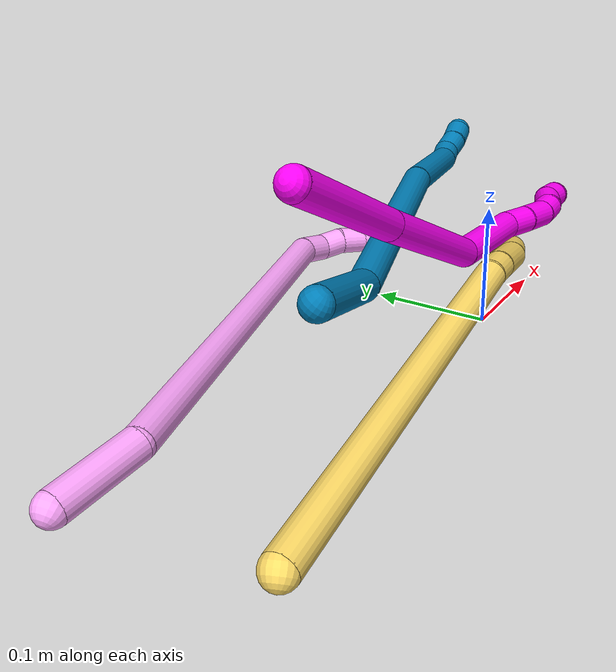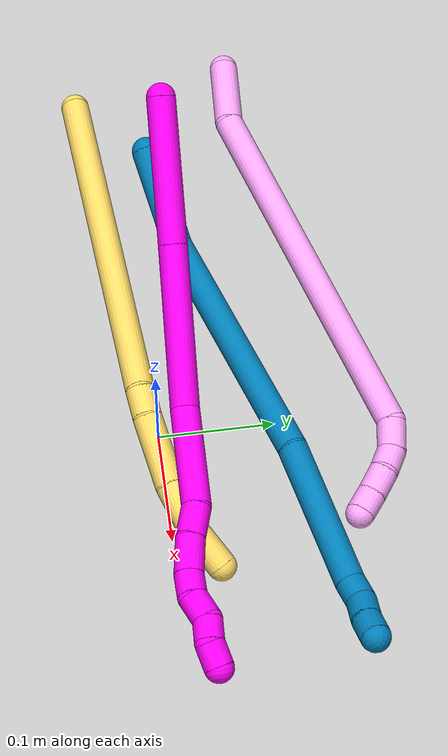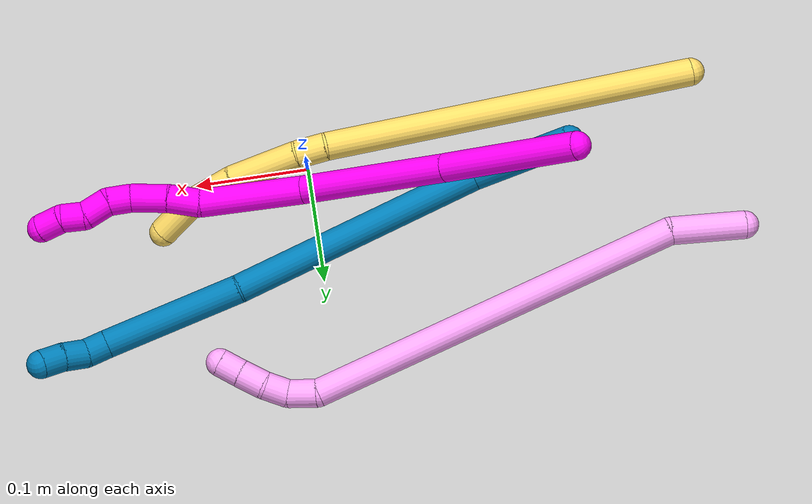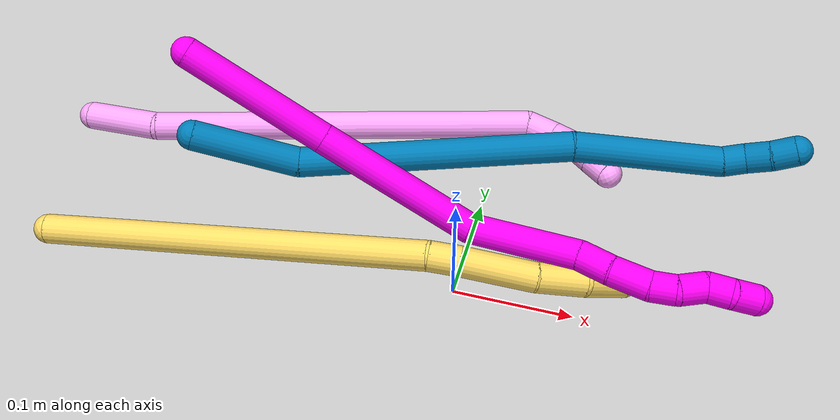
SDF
<sdf version="1.7">
 <world name="default">
  <model name="4">
   <static>0</static>
   <link name="4">
    <collision name="collision-cylinder-e_1_1_4">
     <pose>0.015862 -0.004282 -0.02918 2.99589 0.493463 2.57753</pose>
     <geometry><cylinder><radius>0.0125</radius><length>0.066974</length></cylinder></geometry>
     <surface>
      <friction><ode><mu>1.16</mu><mu2>1.16</mu2><slip1>0</slip1><slip2>0</slip2></ode></friction>
      <contact><ode><kp>1e+06</kp><kd>1</kd><max_vel>0</max_vel><min_depth>0.001</min_depth></ode></contact>
     </surface>
    </collision>
    <visual name="visual-cylinder-e_1_1_4">
     <pose>0.015862 -0.004282 -0.02918 2.99589 0.493463 2.57753</pose>
     <geometry><cylinder><radius>0.0125</radius><length>0.066974</length></cylinder></geometry>
     <material><ambient>1 0.65098 0.996078 1</ambient></material>
    </visual>
    <collision name="collision-cylinder-e_2_4_5">
     <pose>0.084293 -0.083086 -0.201927 2.6628 0.314221 1.15141</pose>
     <geometry><cylinder><radius>0.0125</radius><length>0.340169</length></cylinder></geometry>
     <surface>
      <friction><ode><mu>1.16</mu><mu2>1.16</mu2><slip1>0</slip1><slip2>0</slip2></ode></friction>
      <contact><ode><kp>1e+06</kp><kd>1</kd><max_vel>0</max_vel><min_depth>0.001</min_depth></ode></contact>
     </surface>
    </collision>
    <visual name="visual-cylinder-e_2_4_5">
     <pose>0.084293 -0.083086 -0.201927 2.6628 0.314221 1.15141</pose>
     <geometry><cylinder><radius>0.0125</radius><length>0.340169</length></cylinder></geometry>
     <material><ambient>1 0.65098 0.996078 1</ambient></material>
    </visual>
    <collision name="collision-cylinder-e_3_5_6">
     <pose>0.145878 -0.160586 -0.354809 2.83213 0.744835 2.38181</pose>
     <geometry><cylinder><radius>0.0125</radius><length>0.026601</length></cylinder></geometry>
     <surface>
      <friction><ode><mu>1.16</mu><mu2>1.16</mu2><slip1>0</slip1><slip2>0</slip2></ode></friction>
      <contact><ode><kp>1e+06</kp><kd>1</kd><max_vel>0</max_vel><min_depth>0.001</min_depth></ode></contact>
     </surface>
    </collision>
    <visual name="visual-cylinder-e_3_5_6">
     <pose>0.145878 -0.160586 -0.354809 2.83213 0.744835 2.38181</pose>
     <geometry><cylinder><radius>0.0125</radius><length>0.026601</length></cylinder></geometry>
     <material><ambient>1 0.65098 0.996078 1</ambient></material>
    </visual>
    <collision name="collision-cylinder-e_4_6_7">
     <pose>0.162121 -0.161204 -0.372057 -2.85245 0.717721 -2.40113</pose>
     <geometry><cylinder><radius>0.0125</radius><length>0.021977</length></cylinder></geometry>
     <surface>
      <friction><ode><mu>1.16</mu><mu2>1.16</mu2><slip1>0</slip1><slip2>0</slip2></ode></friction>
      <contact><ode><kp>1e+06</kp><kd>1</kd><max_vel>0</max_vel><min_depth>0.001</min_depth></ode></contact>
     </surface>
    </collision>
    <visual name="visual-cylinder-e_4_6_7">
     <pose>0.162121 -0.161204 -0.372057 -2.85245 0.717721 -2.40113</pose>
     <geometry><cylinder><radius>0.0125</radius><length>0.021977</length></cylinder></geometry>
     <material><ambient>1 0.65098 0.996078 1</ambient></material>
    </visual>
    <collision name="collision-cylinder-e_5_7_8">
     <pose>0.179002 -0.156496 -0.386404 -2.79069 0.955159 -2.48157</pose>
     <geometry><cylinder><radius>0.0125</radius><length>0.023652</length></cylinder></geometry>
     <surface>
      <friction><ode><mu>1.16</mu><mu2>1.16</mu2><slip1>0</slip1><slip2>0</slip2></ode></friction>
      <contact><ode><kp>1e+06</kp><kd>1</kd><max_vel>0</max_vel><min_depth>0.001</min_depth></ode></contact>
     </surface>
    </collision>
    <visual name="visual-cylinder-e_5_7_8">
     <pose>0.179002 -0.156496 -0.386404 -2.79069 0.955159 -2.48157</pose>
     <geometry><cylinder><radius>0.0125</radius><length>0.023652</length></cylinder></geometry>
     <material><ambient>1 0.65098 0.996078 1</ambient></material>
    </visual>
    <collision name="collision-cylinder-e_6_8_2">
     <pose>0.196712 -0.151405 -0.398643 -2.70146 0.896375 -2.27071</pose>
     <geometry><cylinder><radius>0.0125</radius><length>0.020627</length></cylinder></geometry>
     <surface>
      <friction><ode><mu>1.16</mu><mu2>1.16</mu2><slip1>0</slip1><slip2>0</slip2></ode></friction>
      <contact><ode><kp>1e+06</kp><kd>1</kd><max_vel>0</max_vel><min_depth>0.001</min_depth></ode></contact>
     </surface>
    </collision>
    <visual name="visual-cylinder-e_6_8_2">
     <pose>0.196712 -0.151405 -0.398643 -2.70146 0.896375 -2.27071</pose>
     <geometry><cylinder><radius>0.0125</radius><length>0.020627</length></cylinder></geometry>
     <material><ambient>1 0.65098 0.996078 1</ambient></material>
    </visual>
    <collision name="collision-sphere-2">
     <pose>0.204768 -0.148661 -0.40447 0 -0 0</pose>
     <geometry><sphere><radius>0.0125</radius></sphere></geometry>
     <surface>
      <friction><ode><mu>1.16</mu><mu2>1.16</mu2><slip1>0</slip1><slip2>0</slip2></ode></friction>
      <contact><ode><kp>1e+06</kp><kd>1</kd><max_vel>0</max_vel><min_depth>0.001</min_depth></ode></contact>
     </surface>
    </collision>
    <visual name="visual-sphere-2">
     <pose>0.204768 -0.148661 -0.40447 0 -0 0</pose>
     <geometry><sphere><radius>0.0125</radius></sphere></geometry>
     <material><ambient>1 0.65098 0.996078 1</ambient></material>
    </visual>
    <collision name="collision-sphere-4">
     <pose>0.031724 -0.008564 -0.058359 0 -0 0</pose>
     <geometry><sphere><radius>0.0125</radius></sphere></geometry>
     <surface>
      <friction><ode><mu>1.16</mu><mu2>1.16</mu2><slip1>0</slip1><slip2>0</slip2></ode></friction>
      <contact><ode><kp>1e+06</kp><kd>1</kd><max_vel>0</max_vel><min_depth>0.001</min_depth></ode></contact>
     </surface>
    </collision>
    <visual name="visual-sphere-4">
     <pose>0.031724 -0.008564 -0.058359 0 -0 0</pose>
     <geometry><sphere><radius>0.0125</radius></sphere></geometry>
     <material><ambient>1 0.65098 0.996078 1</ambient></material>
    </visual>
    <collision name="collision-sphere-1">
     <geometry><sphere><radius>0.0125</radius></sphere></geometry>
     <surface>
      <friction><ode><mu>1.16</mu><mu2>1.16</mu2><slip1>0</slip1><slip2>0</slip2></ode></friction>
      <contact><ode><kp>1e+06</kp><kd>1</kd><max_vel>0</max_vel><min_depth>0.001</min_depth></ode></contact>
     </surface>
    </collision>
    <visual name="visual-sphere-1">
     <geometry><sphere><radius>0.0125</radius></sphere></geometry>
     <material><ambient>1 0.65098 0.996078 1</ambient></material>
    </visual>
    <collision name="collision-sphere-8">
     <pose>0.188657 -0.154149 -0.392817 0 -0 0</pose>
     <geometry><sphere><radius>0.0125</radius></sphere></geometry>
     <surface>
      <friction><ode><mu>1.16</mu><mu2>1.16</mu2><slip1>0</slip1><slip2>0</slip2></ode></friction>
      <contact><ode><kp>1e+06</kp><kd>1</kd><max_vel>0</max_vel><min_depth>0.001</min_depth></ode></contact>
     </surface>
    </collision>
    <visual name="visual-sphere-8">
     <pose>0.188657 -0.154149 -0.392817 0 -0 0</pose>
     <geometry><sphere><radius>0.0125</radius></sphere></geometry>
     <material><ambient>1 0.65098 0.996078 1</ambient></material>
    </visual>
    <collision name="collision-sphere-5">
     <pose>0.136862 -0.157608 -0.345495 0 -0 0</pose>
     <geometry><sphere><radius>0.0125</radius></sphere></geometry>
     <surface>
      <friction><ode><mu>1.16</mu><mu2>1.16</mu2><slip1>0</slip1><slip2>0</slip2></ode></friction>
      <contact><ode><kp>1e+06</kp><kd>1</kd><max_vel>0</max_vel><min_depth>0.001</min_depth></ode></contact>
     </surface>
    </collision>
    <visual name="visual-sphere-5">
     <pose>0.136862 -0.157608 -0.345495 0 -0 0</pose>
     <geometry><sphere><radius>0.0125</radius></sphere></geometry>
     <material><ambient>1 0.65098 0.996078 1</ambient></material>
    </visual>
    <collision name="collision-sphere-6">
     <pose>0.154894 -0.163564 -0.364123 0 -0 0</pose>
     <geometry><sphere><radius>0.0125</radius></sphere></geometry>
     <surface>
      <friction><ode><mu>1.16</mu><mu2>1.16</mu2><slip1>0</slip1><slip2>0</slip2></ode></friction>
      <contact><ode><kp>1e+06</kp><kd>1</kd><max_vel>0</max_vel><min_depth>0.001</min_depth></ode></contact>
     </surface>
    </collision>
    <visual name="visual-sphere-6">
     <pose>0.154894 -0.163564 -0.364123 0 -0 0</pose>
     <geometry><sphere><radius>0.0125</radius></sphere></geometry>
     <material><ambient>1 0.65098 0.996078 1</ambient></material>
    </visual>
    <collision name="collision-sphere-7">
     <pose>0.169348 -0.158844 -0.379991 0 -0 0</pose>
     <geometry><sphere><radius>0.0125</radius></sphere></geometry>
     <surface>
      <friction><ode><mu>1.16</mu><mu2>1.16</mu2><slip1>0</slip1><slip2>0</slip2></ode></friction>
      <contact><ode><kp>1e+06</kp><kd>1</kd><max_vel>0</max_vel><min_depth>0.001</min_depth></ode></contact>
     </surface>
    </collision>
    <visual name="visual-sphere-7">
     <pose>0.169348 -0.158844 -0.379991 0 -0 0</pose>
     <geometry><sphere><radius>0.0125</radius></sphere></geometry>
     <material><ambient>1 0.65098 0.996078 1</ambient></material>
    </visual>
    <inertial>
     <pose>0.090942 -0.086378 -0.211241 0 -0 0</pose>
     <mass>0.5</mass>
     <inertia><ixx>0.00414</ixx><ixy>0</ixy><ixz>0</ixz><iyy>0.00213</iyy><iyz>0</iyz><izz>0.000378</izz></inertia>
    </inertial>
   </link>
   <pose>-0.373263 0.105929 0.011498 2.29256 0.646978 -0.891581</pose>
  </model>
  <model name="5">
   <static>0</static>
   <link name="5">
    <collision name="collision-cylinder-e_1_1_4">
     <pose>0.108459 -0.007317 0.125306 0.058326 0.712613 0.021714</pose>
     <geometry><cylinder><radius>0.0125</radius><length>0.331774</length></cylinder></geometry>
     <surface>
      <friction><ode><mu>1.16</mu><mu2>1.16</mu2><slip1>0</slip1><slip2>0</slip2></ode></friction>
      <contact><ode><kp>1e+06</kp><kd>1</kd><max_vel>0</max_vel><min_depth>0.001</min_depth></ode></contact>
     </surface>
    </collision>
    <visual name="visual-cylinder-e_1_1_4">
     <pose>0.108459 -0.007317 0.125306 0.058326 0.712613 0.021714</pose>
     <geometry><cylinder><radius>0.0125</radius><length>0.331774</length></cylinder></geometry>
     <material><ambient>1 0.858824 0.4 1</ambient></material>
    </visual>
    <collision name="collision-cylinder-e_2_4_5">
     <pose>0.227007 -0.013821 0.258728 -0.099739 0.890882 -0.04765</pose>
     <geometry><cylinder><radius>0.0125</radius><length>0.025947</length></cylinder></geometry>
     <surface>
      <friction><ode><mu>1.16</mu><mu2>1.16</mu2><slip1>0</slip1><slip2>0</slip2></ode></friction>
      <contact><ode><kp>1e+06</kp><kd>1</kd><max_vel>0</max_vel><min_depth>0.001</min_depth></ode></contact>
     </surface>
    </collision>
    <visual name="visual-cylinder-e_2_4_5">
     <pose>0.227007 -0.013821 0.258728 -0.099739 0.890882 -0.04765</pose>
     <geometry><cylinder><radius>0.0125</radius><length>0.025947</length></cylinder></geometry>
     <material><ambient>1 0.858824 0.4 1</ambient></material>
    </visual>
    <collision name="collision-cylinder-e_3_5_6">
     <pose>0.262972 -0.007634 0.282953 -0.322094 0.990046 -0.174956</pose>
     <geometry><cylinder><radius>0.0125</radius><length>0.061903</length></cylinder></geometry>
     <surface>
      <friction><ode><mu>1.16</mu><mu2>1.16</mu2><slip1>0</slip1><slip2>0</slip2></ode></friction>
      <contact><ode><kp>1e+06</kp><kd>1</kd><max_vel>0</max_vel><min_depth>0.001</min_depth></ode></contact>
     </surface>
    </collision>
    <visual name="visual-cylinder-e_3_5_6">
     <pose>0.262972 -0.007634 0.282953 -0.322094 0.990046 -0.174956</pose>
     <geometry><cylinder><radius>0.0125</radius><length>0.061903</length></cylinder></geometry>
     <material><ambient>1 0.858824 0.4 1</ambient></material>
    </visual>
    <collision name="collision-cylinder-e_4_6_7">
     <pose>0.304935 0.004248 0.310026 -0.535539 0.900554 -0.263709</pose>
     <geometry><cylinder><radius>0.0125</radius><length>0.041052</length></cylinder></geometry>
     <surface>
      <friction><ode><mu>1.16</mu><mu2>1.16</mu2><slip1>0</slip1><slip2>0</slip2></ode></friction>
      <contact><ode><kp>1e+06</kp><kd>1</kd><max_vel>0</max_vel><min_depth>0.001</min_depth></ode></contact>
     </surface>
    </collision>
    <visual name="visual-cylinder-e_4_6_7">
     <pose>0.304935 0.004248 0.310026 -0.535539 0.900554 -0.263709</pose>
     <geometry><cylinder><radius>0.0125</radius><length>0.041052</length></cylinder></geometry>
     <material><ambient>1 0.858824 0.4 1</ambient></material>
    </visual>
    <collision name="collision-cylinder-e_5_7_2">
     <pose>0.335626 0.021706 0.328296 -0.982514 0.837263 -0.467382</pose>
     <geometry><cylinder><radius>0.0125</radius><length>0.039324</length></cylinder></geometry>
     <surface>
      <friction><ode><mu>1.16</mu><mu2>1.16</mu2><slip1>0</slip1><slip2>0</slip2></ode></friction>
      <contact><ode><kp>1e+06</kp><kd>1</kd><max_vel>0</max_vel><min_depth>0.001</min_depth></ode></contact>
     </surface>
    </collision>
    <visual name="visual-cylinder-e_5_7_2">
     <pose>0.335626 0.021706 0.328296 -0.982514 0.837263 -0.467382</pose>
     <geometry><cylinder><radius>0.0125</radius><length>0.039324</length></cylinder></geometry>
     <material><ambient>1 0.858824 0.4 1</ambient></material>
    </visual>
    <collision name="collision-sphere-2">
     <pose>0.350231 0.032657 0.335601 0 -0 0</pose>
     <geometry><sphere><radius>0.0125</radius></sphere></geometry>
     <surface>
      <friction><ode><mu>1.16</mu><mu2>1.16</mu2><slip1>0</slip1><slip2>0</slip2></ode></friction>
      <contact><ode><kp>1e+06</kp><kd>1</kd><max_vel>0</max_vel><min_depth>0.001</min_depth></ode></contact>
     </surface>
    </collision>
    <visual name="visual-sphere-2">
     <pose>0.350231 0.032657 0.335601 0 -0 0</pose>
     <geometry><sphere><radius>0.0125</radius></sphere></geometry>
     <material><ambient>1 0.858824 0.4 1</ambient></material>
    </visual>
    <collision name="collision-sphere-7">
     <pose>0.32102 0.010755 0.320991 0 -0 0</pose>
     <geometry><sphere><radius>0.0125</radius></sphere></geometry>
     <surface>
      <friction><ode><mu>1.16</mu><mu2>1.16</mu2><slip1>0</slip1><slip2>0</slip2></ode></friction>
      <contact><ode><kp>1e+06</kp><kd>1</kd><max_vel>0</max_vel><min_depth>0.001</min_depth></ode></contact>
     </surface>
    </collision>
    <visual name="visual-sphere-7">
     <pose>0.32102 0.010755 0.320991 0 -0 0</pose>
     <geometry><sphere><radius>0.0125</radius></sphere></geometry>
     <material><ambient>1 0.858824 0.4 1</ambient></material>
    </visual>
    <collision name="collision-sphere-6">
     <pose>0.288849 -0.002258 0.299061 0 -0 0</pose>
     <geometry><sphere><radius>0.0125</radius></sphere></geometry>
     <surface>
      <friction><ode><mu>1.16</mu><mu2>1.16</mu2><slip1>0</slip1><slip2>0</slip2></ode></friction>
      <contact><ode><kp>1e+06</kp><kd>1</kd><max_vel>0</max_vel><min_depth>0.001</min_depth></ode></contact>
     </surface>
    </collision>
    <visual name="visual-sphere-6">
     <pose>0.288849 -0.002258 0.299061 0 -0 0</pose>
     <geometry><sphere><radius>0.0125</radius></sphere></geometry>
     <material><ambient>1 0.858824 0.4 1</ambient></material>
    </visual>
    <collision name="collision-sphere-5">
     <pose>0.237096 -0.013009 0.266844 0 -0 0</pose>
     <geometry><sphere><radius>0.0125</radius></sphere></geometry>
     <surface>
      <friction><ode><mu>1.16</mu><mu2>1.16</mu2><slip1>0</slip1><slip2>0</slip2></ode></friction>
      <contact><ode><kp>1e+06</kp><kd>1</kd><max_vel>0</max_vel><min_depth>0.001</min_depth></ode></contact>
     </surface>
    </collision>
    <visual name="visual-sphere-5">
     <pose>0.237096 -0.013009 0.266844 0 -0 0</pose>
     <geometry><sphere><radius>0.0125</radius></sphere></geometry>
     <material><ambient>1 0.858824 0.4 1</ambient></material>
    </visual>
    <collision name="collision-sphere-1">
     <geometry><sphere><radius>0.0125</radius></sphere></geometry>
     <surface>
      <friction><ode><mu>1.16</mu><mu2>1.16</mu2><slip1>0</slip1><slip2>0</slip2></ode></friction>
      <contact><ode><kp>1e+06</kp><kd>1</kd><max_vel>0</max_vel><min_depth>0.001</min_depth></ode></contact>
     </surface>
    </collision>
    <visual name="visual-sphere-1">
     <geometry><sphere><radius>0.0125</radius></sphere></geometry>
     <material><ambient>1 0.858824 0.4 1</ambient></material>
    </visual>
    <collision name="collision-sphere-4">
     <pose>0.216918 -0.014634 0.250612 0 -0 0</pose>
     <geometry><sphere><radius>0.0125</radius></sphere></geometry>
     <surface>
      <friction><ode><mu>1.16</mu><mu2>1.16</mu2><slip1>0</slip1><slip2>0</slip2></ode></friction>
      <contact><ode><kp>1e+06</kp><kd>1</kd><max_vel>0</max_vel><min_depth>0.001</min_depth></ode></contact>
     </surface>
    </collision>
    <visual name="visual-sphere-4">
     <pose>0.216918 -0.014634 0.250612 0 -0 0</pose>
     <geometry><sphere><radius>0.0125</radius></sphere></geometry>
     <material><ambient>1 0.858824 0.4 1</ambient></material>
    </visual>
    <inertial>
     <pose>0.167738 -0.004462 0.182878 0 -0 0</pose>
     <mass>0.5</mass>
     <inertia>
      <ixx>0.002406</ixx>
      <ixy>0</ixy>
      <ixz>0</ixz>
      <iyy>0.003136</iyy>
      <iyz>0</iyz>
      <izz>-0.001878</izz>
     </inertia>
    </inertial>
   </link>
   <pose>-0.346824 -0.035181 0.011498 -0.396601 0.702228 -0.185217</pose>
  </model>
  <model name="9">
   <static>0</static>
   <link name="9">
    <collision name="collision-cylinder-e_1_1_4">
     <pose>0.042235 -0.013725 -0.005634 1.96031 1.23299 1.6261</pose>
     <geometry><cylinder><radius>0.0125</radius><length>0.08953</length></cylinder></geometry>
     <surface>
      <friction><ode><mu>1.16</mu><mu2>1.16</mu2><slip1>0</slip1><slip2>0</slip2></ode></friction>
      <contact><ode><kp>1e+06</kp><kd>1</kd><max_vel>0</max_vel><min_depth>0.001</min_depth></ode></contact>
     </surface>
    </collision>
    <visual name="visual-cylinder-e_1_1_4">
     <pose>0.042235 -0.013725 -0.005634 1.96031 1.23299 1.6261</pose>
     <geometry><cylinder><radius>0.0125</radius><length>0.08953</length></cylinder></geometry>
     <material><ambient>0 0.490196 0.709804 1</ambient></material>
    </visual>
    <collision name="collision-cylinder-e_2_4_5">
     <pose>0.196648 -0.031454 -0.003698 0.486625 1.4946 0.452142</pose>
     <geometry><cylinder><radius>0.0125</radius><length>0.225009</length></cylinder></geometry>
     <surface>
      <friction><ode><mu>1.16</mu><mu2>1.16</mu2><slip1>0</slip1><slip2>0</slip2></ode></friction>
      <contact><ode><kp>1e+06</kp><kd>1</kd><max_vel>0</max_vel><min_depth>0.001</min_depth></ode></contact>
     </surface>
    </collision>
    <visual name="visual-cylinder-e_2_4_5">
     <pose>0.196648 -0.031454 -0.003698 0.486625 1.4946 0.452142</pose>
     <geometry><cylinder><radius>0.0125</radius><length>0.225009</length></cylinder></geometry>
     <material><ambient>0 0.490196 0.709804 1</ambient></material>
    </visual>
    <collision name="collision-cylinder-e_3_5_6">
     <pose>0.369737 -0.046657 0.002413 1.70036 1.38748 1.51641</pose>
     <geometry><cylinder><radius>0.0125</radius><length>0.123897</length></cylinder></geometry>
     <surface>
      <friction><ode><mu>1.16</mu><mu2>1.16</mu2><slip1>0</slip1><slip2>0</slip2></ode></friction>
      <contact><ode><kp>1e+06</kp><kd>1</kd><max_vel>0</max_vel><min_depth>0.001</min_depth></ode></contact>
     </surface>
    </collision>
    <visual name="visual-cylinder-e_3_5_6">
     <pose>0.369737 -0.046657 0.002413 1.70036 1.38748 1.51641</pose>
     <geometry><cylinder><radius>0.0125</radius><length>0.123897</length></cylinder></geometry>
     <material><ambient>0 0.490196 0.709804 1</ambient></material>
    </visual>
    <collision name="collision-cylinder-e_4_6_7">
     <pose>0.440531 -0.057546 0.002725 -0.172357 1.39079 -0.143931</pose>
     <geometry><cylinder><radius>0.0125</radius><length>0.020092</length></cylinder></geometry>
     <surface>
      <friction><ode><mu>1.16</mu><mu2>1.16</mu2><slip1>0</slip1><slip2>0</slip2></ode></friction>
      <contact><ode><kp>1e+06</kp><kd>1</kd><max_vel>0</max_vel><min_depth>0.001</min_depth></ode></contact>
     </surface>
    </collision>
    <visual name="visual-cylinder-e_4_6_7">
     <pose>0.440531 -0.057546 0.002725 -0.172357 1.39079 -0.143931</pose>
     <geometry><cylinder><radius>0.0125</radius><length>0.020092</length></cylinder></geometry>
     <material><ambient>0 0.490196 0.709804 1</ambient></material>
    </visual>
    <collision name="collision-cylinder-e_5_7_8">
     <pose>0.459896 -0.057872 0.009267 0.132115 1.10123 0.081186</pose>
     <geometry><cylinder><radius>0.0125</radius><length>0.021266</length></cylinder></geometry>
     <surface>
      <friction><ode><mu>1.16</mu><mu2>1.16</mu2><slip1>0</slip1><slip2>0</slip2></ode></friction>
      <contact><ode><kp>1e+06</kp><kd>1</kd><max_vel>0</max_vel><min_depth>0.001</min_depth></ode></contact>
     </surface>
    </collision>
    <visual name="visual-cylinder-e_5_7_8">
     <pose>0.459896 -0.057872 0.009267 0.132115 1.10123 0.081186</pose>
     <geometry><cylinder><radius>0.0125</radius><length>0.021266</length></cylinder></geometry>
     <material><ambient>0 0.490196 0.709804 1</ambient></material>
    </visual>
    <collision name="collision-cylinder-e_6_8_2">
     <pose>0.478764 -0.057822 0.017713 -0.18379 1.19158 -0.124795</pose>
     <geometry><cylinder><radius>0.0125</radius><length>0.020207</length></cylinder></geometry>
     <surface>
      <friction><ode><mu>1.16</mu><mu2>1.16</mu2><slip1>0</slip1><slip2>0</slip2></ode></friction>
      <contact><ode><kp>1e+06</kp><kd>1</kd><max_vel>0</max_vel><min_depth>0.001</min_depth></ode></contact>
     </surface>
    </collision>
    <visual name="visual-cylinder-e_6_8_2">
     <pose>0.478764 -0.057822 0.017713 -0.18379 1.19158 -0.124795</pose>
     <geometry><cylinder><radius>0.0125</radius><length>0.020207</length></cylinder></geometry>
     <material><ambient>0 0.490196 0.709804 1</ambient></material>
    </visual>
    <collision name="collision-sphere-2">
     <pose>0.48815 -0.057138 0.021391 0 -0 0</pose>
     <geometry><sphere><radius>0.0125</radius></sphere></geometry>
     <surface>
      <friction><ode><mu>1.16</mu><mu2>1.16</mu2><slip1>0</slip1><slip2>0</slip2></ode></friction>
      <contact><ode><kp>1e+06</kp><kd>1</kd><max_vel>0</max_vel><min_depth>0.001</min_depth></ode></contact>
     </surface>
    </collision>
    <visual name="visual-sphere-2">
     <pose>0.48815 -0.057138 0.021391 0 -0 0</pose>
     <geometry><sphere><radius>0.0125</radius></sphere></geometry>
     <material><ambient>0 0.490196 0.709804 1</ambient></material>
    </visual>
    <collision name="collision-sphere-4">
     <pose>0.08447 -0.027449 -0.011267 0 -0 0</pose>
     <geometry><sphere><radius>0.0125</radius></sphere></geometry>
     <surface>
      <friction><ode><mu>1.16</mu><mu2>1.16</mu2><slip1>0</slip1><slip2>0</slip2></ode></friction>
      <contact><ode><kp>1e+06</kp><kd>1</kd><max_vel>0</max_vel><min_depth>0.001</min_depth></ode></contact>
     </surface>
    </collision>
    <visual name="visual-sphere-4">
     <pose>0.08447 -0.027449 -0.011267 0 -0 0</pose>
     <geometry><sphere><radius>0.0125</radius></sphere></geometry>
     <material><ambient>0 0.490196 0.709804 1</ambient></material>
    </visual>
    <collision name="collision-sphere-1">
     <geometry><sphere><radius>0.0125</radius></sphere></geometry>
     <surface>
      <friction><ode><mu>1.16</mu><mu2>1.16</mu2><slip1>0</slip1><slip2>0</slip2></ode></friction>
      <contact><ode><kp>1e+06</kp><kd>1</kd><max_vel>0</max_vel><min_depth>0.001</min_depth></ode></contact>
     </surface>
    </collision>
    <visual name="visual-sphere-1">
     <geometry><sphere><radius>0.0125</radius></sphere></geometry>
     <material><ambient>0 0.490196 0.709804 1</ambient></material>
    </visual>
    <collision name="collision-sphere-8">
     <pose>0.469378 -0.058505 0.014036 0 -0 0</pose>
     <geometry><sphere><radius>0.0125</radius></sphere></geometry>
     <surface>
      <friction><ode><mu>1.16</mu><mu2>1.16</mu2><slip1>0</slip1><slip2>0</slip2></ode></friction>
      <contact><ode><kp>1e+06</kp><kd>1</kd><max_vel>0</max_vel><min_depth>0.001</min_depth></ode></contact>
     </surface>
    </collision>
    <visual name="visual-sphere-8">
     <pose>0.469378 -0.058505 0.014036 0 -0 0</pose>
     <geometry><sphere><radius>0.0125</radius></sphere></geometry>
     <material><ambient>0 0.490196 0.709804 1</ambient></material>
    </visual>
    <collision name="collision-sphere-5">
     <pose>0.308826 -0.035459 0.003872 0 -0 0</pose>
     <geometry><sphere><radius>0.0125</radius></sphere></geometry>
     <surface>
      <friction><ode><mu>1.16</mu><mu2>1.16</mu2><slip1>0</slip1><slip2>0</slip2></ode></friction>
      <contact><ode><kp>1e+06</kp><kd>1</kd><max_vel>0</max_vel><min_depth>0.001</min_depth></ode></contact>
     </surface>
    </collision>
    <visual name="visual-sphere-5">
     <pose>0.308826 -0.035459 0.003872 0 -0 0</pose>
     <geometry><sphere><radius>0.0125</radius></sphere></geometry>
     <material><ambient>0 0.490196 0.709804 1</ambient></material>
    </visual>
    <collision name="collision-sphere-6">
     <pose>0.430647 -0.057855 0.000954 0 -0 0</pose>
     <geometry><sphere><radius>0.0125</radius></sphere></geometry>
     <surface>
      <friction><ode><mu>1.16</mu><mu2>1.16</mu2><slip1>0</slip1><slip2>0</slip2></ode></friction>
      <contact><ode><kp>1e+06</kp><kd>1</kd><max_vel>0</max_vel><min_depth>0.001</min_depth></ode></contact>
     </surface>
    </collision>
    <visual name="visual-sphere-6">
     <pose>0.430647 -0.057855 0.000954 0 -0 0</pose>
     <geometry><sphere><radius>0.0125</radius></sphere></geometry>
     <material><ambient>0 0.490196 0.709804 1</ambient></material>
    </visual>
    <collision name="collision-sphere-7">
     <pose>0.450414 -0.057238 0.004497 0 -0 0</pose>
     <geometry><sphere><radius>0.0125</radius></sphere></geometry>
     <surface>
      <friction><ode><mu>1.16</mu><mu2>1.16</mu2><slip1>0</slip1><slip2>0</slip2></ode></friction>
      <contact><ode><kp>1e+06</kp><kd>1</kd><max_vel>0</max_vel><min_depth>0.001</min_depth></ode></contact>
     </surface>
    </collision>
    <visual name="visual-sphere-7">
     <pose>0.450414 -0.057238 0.004497 0 -0 0</pose>
     <geometry><sphere><radius>0.0125</radius></sphere></geometry>
     <material><ambient>0 0.490196 0.709804 1</ambient></material>
    </visual>
    <inertial>
     <pose>0.244287 -0.035284 -0.000856 0 -0 0</pose>
     <mass>0.5</mass>
     <inertia>
      <ixx>0.000188</ixx>
      <ixy>0</ixy>
      <ixz>0</ixz>
      <iyy>0.001254</iyy>
      <iyz>0</iyz>
      <izz>-0.001095</izz>
     </inertia>
    </inertial>
   </link>
   <pose>-0.226121 0.019099 0.102444 0.625658 -0.015569 0.374247</pose>
  </model>
  <model name="10">
   <static>0</static>
   <link name="10">
    <collision name="collision-cylinder-e_1_1_4">
     <pose>0.000407 -0.006059 -0.062341 3.0447 0.006491 0.133691</pose>
     <geometry><cylinder><radius>0.0125</radius><length>0.125271</length></cylinder></geometry>
     <surface>
      <friction><ode><mu>1.16</mu><mu2>1.16</mu2><slip1>0</slip1><slip2>0</slip2></ode></friction>
      <contact><ode><kp>1e+06</kp><kd>1</kd><max_vel>0</max_vel><min_depth>0.001</min_depth></ode></contact>
     </surface>
    </collision>
    <visual name="visual-cylinder-e_1_1_4">
     <pose>0.000407 -0.006059 -0.062341 3.0447 0.006491 0.133691</pose>
     <geometry><cylinder><radius>0.0125</radius><length>0.125271</length></cylinder></geometry>
     <material><ambient>1 0 0.964706 1</ambient></material>
    </visual>
    <collision name="collision-cylinder-e_2_4_5">
     <pose>0.002673 -0.019833 -0.19334 3.0297 0.026907 0.471514</pose>
     <geometry><cylinder><radius>0.0125</radius><length>0.138232</length></cylinder></geometry>
     <surface>
      <friction><ode><mu>1.16</mu><mu2>1.16</mu2><slip1>0</slip1><slip2>0</slip2></ode></friction>
      <contact><ode><kp>1e+06</kp><kd>1</kd><max_vel>0</max_vel><min_depth>0.001</min_depth></ode></contact>
     </surface>
    </collision>
    <visual name="visual-cylinder-e_2_4_5">
     <pose>0.002673 -0.019833 -0.19334 3.0297 0.026907 0.471514</pose>
     <geometry><cylinder><radius>0.0125</radius><length>0.138232</length></cylinder></geometry>
     <material><ambient>1 0 0.964706 1</ambient></material>
    </visual>
    <collision name="collision-cylinder-e_3_5_6">
     <pose>0.024319 -0.036461 -0.301713 2.92083 0.452504 2.24415</pose>
     <geometry><cylinder><radius>0.0125</radius><length>0.090514</length></cylinder></geometry>
     <surface>
      <friction><ode><mu>1.16</mu><mu2>1.16</mu2><slip1>0</slip1><slip2>0</slip2></ode></friction>
      <contact><ode><kp>1e+06</kp><kd>1</kd><max_vel>0</max_vel><min_depth>0.001</min_depth></ode></contact>
     </surface>
    </collision>
    <visual name="visual-cylinder-e_3_5_6">
     <pose>0.024319 -0.036461 -0.301713 2.92083 0.452504 2.24415</pose>
     <geometry><cylinder><radius>0.0125</radius><length>0.090514</length></cylinder></geometry>
     <material><ambient>1 0 0.964706 1</ambient></material>
    </visual>
    <collision name="collision-cylinder-e_4_6_7">
     <pose>0.048958 -0.051774 -0.353006 2.6366 0.351456 1.20553</pose>
     <geometry><cylinder><radius>0.0125</radius><length>0.028182</length></cylinder></geometry>
     <surface>
      <friction><ode><mu>1.16</mu><mu2>1.16</mu2><slip1>0</slip1><slip2>0</slip2></ode></friction>
      <contact><ode><kp>1e+06</kp><kd>1</kd><max_vel>0</max_vel><min_depth>0.001</min_depth></ode></contact>
     </surface>
    </collision>
    <visual name="visual-cylinder-e_4_6_7">
     <pose>0.048958 -0.051774 -0.353006 2.6366 0.351456 1.20553</pose>
     <geometry><cylinder><radius>0.0125</radius><length>0.028182</length></cylinder></geometry>
     <material><ambient>1 0 0.964706 1</ambient></material>
    </visual>
    <collision name="collision-cylinder-e_5_7_8">
     <pose>0.05959 -0.063421 -0.378842 2.78898 0.363629 1.60222</pose>
     <geometry><cylinder><radius>0.0125</radius><length>0.032512</length></cylinder></geometry>
     <surface>
      <friction><ode><mu>1.16</mu><mu2>1.16</mu2><slip1>0</slip1><slip2>0</slip2></ode></friction>
      <contact><ode><kp>1e+06</kp><kd>1</kd><max_vel>0</max_vel><min_depth>0.001</min_depth></ode></contact>
     </surface>
    </collision>
    <visual name="visual-cylinder-e_5_7_8">
     <pose>0.05959 -0.063421 -0.378842 2.78898 0.363629 1.60222</pose>
     <geometry><cylinder><radius>0.0125</radius><length>0.032512</length></cylinder></geometry>
     <material><ambient>1 0 0.964706 1</ambient></material>
    </visual>
    <collision name="collision-cylinder-e_6_8_9">
     <pose>0.070782 -0.070502 -0.401769 2.93312 0.548201 2.4292</pose>
     <geometry><cylinder><radius>0.0125</radius><length>0.020763</length></cylinder></geometry>
     <surface>
      <friction><ode><mu>1.16</mu><mu2>1.16</mu2><slip1>0</slip1><slip2>0</slip2></ode></friction>
      <contact><ode><kp>1e+06</kp><kd>1</kd><max_vel>0</max_vel><min_depth>0.001</min_depth></ode></contact>
     </surface>
    </collision>
    <visual name="visual-cylinder-e_6_8_9">
     <pose>0.070782 -0.070502 -0.401769 2.93312 0.548201 2.4292</pose>
     <geometry><cylinder><radius>0.0125</radius><length>0.020763</length></cylinder></geometry>
     <material><ambient>1 0 0.964706 1</ambient></material>
    </visual>
    <collision name="collision-cylinder-e_7_9_10">
     <pose>0.082513 -0.069818 -0.419765 -2.87795 0.579295 -2.30439</pose>
     <geometry><cylinder><radius>0.0125</radius><length>0.02309</length></cylinder></geometry>
     <surface>
      <friction><ode><mu>1.16</mu><mu2>1.16</mu2><slip1>0</slip1><slip2>0</slip2></ode></friction>
      <contact><ode><kp>1e+06</kp><kd>1</kd><max_vel>0</max_vel><min_depth>0.001</min_depth></ode></contact>
     </surface>
    </collision>
    <visual name="visual-cylinder-e_7_9_10">
     <pose>0.082513 -0.069818 -0.419765 -2.87795 0.579295 -2.30439</pose>
     <geometry><cylinder><radius>0.0125</radius><length>0.02309</length></cylinder></geometry>
     <material><ambient>1 0 0.964706 1</ambient></material>
    </visual>
    <collision name="collision-cylinder-e_8_10_11">
     <pose>0.093089 -0.069472 -0.437897 2.8998 0.438824 2.14394</pose>
     <geometry><cylinder><radius>0.0125</radius><length>0.020035</length></cylinder></geometry>
     <surface>
      <friction><ode><mu>1.16</mu><mu2>1.16</mu2><slip1>0</slip1><slip2>0</slip2></ode></friction>
      <contact><ode><kp>1e+06</kp><kd>1</kd><max_vel>0</max_vel><min_depth>0.001</min_depth></ode></contact>
     </surface>
    </collision>
    <visual name="visual-cylinder-e_8_10_11">
     <pose>0.093089 -0.069472 -0.437897 2.8998 0.438824 2.14394</pose>
     <geometry><cylinder><radius>0.0125</radius><length>0.020035</length></cylinder></geometry>
     <material><ambient>1 0 0.964706 1</ambient></material>
    </visual>
    <collision name="collision-cylinder-e_9_11_2">
     <pose>0.099773 -0.070256 -0.45703 -3.00809 0.228875 -2.08802</pose>
     <geometry><cylinder><radius>0.0125</radius><length>0.021402</length></cylinder></geometry>
     <surface>
      <friction><ode><mu>1.16</mu><mu2>1.16</mu2><slip1>0</slip1><slip2>0</slip2></ode></friction>
      <contact><ode><kp>1e+06</kp><kd>1</kd><max_vel>0</max_vel><min_depth>0.001</min_depth></ode></contact>
     </surface>
    </collision>
    <visual name="visual-cylinder-e_9_11_2">
     <pose>0.099773 -0.070256 -0.45703 -3.00809 0.228875 -2.08802</pose>
     <geometry><cylinder><radius>0.0125</radius><length>0.021402</length></cylinder></geometry>
     <material><ambient>1 0 0.964706 1</ambient></material>
    </visual>
    <collision name="collision-sphere-2">
     <pose>0.102201 -0.068869 -0.467359 0 -0 0</pose>
     <geometry><sphere><radius>0.0125</radius></sphere></geometry>
     <surface>
      <friction><ode><mu>1.16</mu><mu2>1.16</mu2><slip1>0</slip1><slip2>0</slip2></ode></friction>
      <contact><ode><kp>1e+06</kp><kd>1</kd><max_vel>0</max_vel><min_depth>0.001</min_depth></ode></contact>
     </surface>
    </collision>
    <visual name="visual-sphere-2">
     <pose>0.102201 -0.068869 -0.467359 0 -0 0</pose>
     <geometry><sphere><radius>0.0125</radius></sphere></geometry>
     <material><ambient>1 0 0.964706 1</ambient></material>
    </visual>
    <collision name="collision-sphere-11">
     <pose>0.097345 -0.071643 -0.446701 0 -0 0</pose>
     <geometry><sphere><radius>0.0125</radius></sphere></geometry>
     <surface>
      <friction><ode><mu>1.16</mu><mu2>1.16</mu2><slip1>0</slip1><slip2>0</slip2></ode></friction>
      <contact><ode><kp>1e+06</kp><kd>1</kd><max_vel>0</max_vel><min_depth>0.001</min_depth></ode></contact>
     </surface>
    </collision>
    <visual name="visual-sphere-11">
     <pose>0.097345 -0.071643 -0.446701 0 -0 0</pose>
     <geometry><sphere><radius>0.0125</radius></sphere></geometry>
     <material><ambient>1 0 0.964706 1</ambient></material>
    </visual>
    <collision name="collision-sphere-10">
     <pose>0.088833 -0.0673 -0.429092 0 -0 0</pose>
     <geometry><sphere><radius>0.0125</radius></sphere></geometry>
     <surface>
      <friction><ode><mu>1.16</mu><mu2>1.16</mu2><slip1>0</slip1><slip2>0</slip2></ode></friction>
      <contact><ode><kp>1e+06</kp><kd>1</kd><max_vel>0</max_vel><min_depth>0.001</min_depth></ode></contact>
     </surface>
    </collision>
    <visual name="visual-sphere-10">
     <pose>0.088833 -0.0673 -0.429092 0 -0 0</pose>
     <geometry><sphere><radius>0.0125</radius></sphere></geometry>
     <material><ambient>1 0 0.964706 1</ambient></material>
    </visual>
    <collision name="collision-sphere-9">
     <pose>0.076193 -0.072336 -0.410437 0 -0 0</pose>
     <geometry><sphere><radius>0.0125</radius></sphere></geometry>
     <surface>
      <friction><ode><mu>1.16</mu><mu2>1.16</mu2><slip1>0</slip1><slip2>0</slip2></ode></friction>
      <contact><ode><kp>1e+06</kp><kd>1</kd><max_vel>0</max_vel><min_depth>0.001</min_depth></ode></contact>
     </surface>
    </collision>
    <visual name="visual-sphere-9">
     <pose>0.076193 -0.072336 -0.410437 0 -0 0</pose>
     <geometry><sphere><radius>0.0125</radius></sphere></geometry>
     <material><ambient>1 0 0.964706 1</ambient></material>
    </visual>
    <collision name="collision-sphere-4">
     <pose>0.000813 -0.012118 -0.124681 0 -0 0</pose>
     <geometry><sphere><radius>0.0125</radius></sphere></geometry>
     <surface>
      <friction><ode><mu>1.16</mu><mu2>1.16</mu2><slip1>0</slip1><slip2>0</slip2></ode></friction>
      <contact><ode><kp>1e+06</kp><kd>1</kd><max_vel>0</max_vel><min_depth>0.001</min_depth></ode></contact>
     </surface>
    </collision>
    <visual name="visual-sphere-4">
     <pose>0.000813 -0.012118 -0.124681 0 -0 0</pose>
     <geometry><sphere><radius>0.0125</radius></sphere></geometry>
     <material><ambient>1 0 0.964706 1</ambient></material>
    </visual>
    <collision name="collision-sphere-1">
     <geometry><sphere><radius>0.0125</radius></sphere></geometry>
     <surface>
      <friction><ode><mu>1.16</mu><mu2>1.16</mu2><slip1>0</slip1><slip2>0</slip2></ode></friction>
      <contact><ode><kp>1e+06</kp><kd>1</kd><max_vel>0</max_vel><min_depth>0.001</min_depth></ode></contact>
     </surface>
    </collision>
    <visual name="visual-sphere-1">
     <geometry><sphere><radius>0.0125</radius></sphere></geometry>
     <material><ambient>1 0 0.964706 1</ambient></material>
    </visual>
    <collision name="collision-sphere-8">
     <pose>0.065372 -0.068668 -0.3931 0 -0 0</pose>
     <geometry><sphere><radius>0.0125</radius></sphere></geometry>
     <surface>
      <friction><ode><mu>1.16</mu><mu2>1.16</mu2><slip1>0</slip1><slip2>0</slip2></ode></friction>
      <contact><ode><kp>1e+06</kp><kd>1</kd><max_vel>0</max_vel><min_depth>0.001</min_depth></ode></contact>
     </surface>
    </collision>
    <visual name="visual-sphere-8">
     <pose>0.065372 -0.068668 -0.3931 0 -0 0</pose>
     <geometry><sphere><radius>0.0125</radius></sphere></geometry>
     <material><ambient>1 0 0.964706 1</ambient></material>
    </visual>
    <collision name="collision-sphere-5">
     <pose>0.004532 -0.027548 -0.261999 0 -0 0</pose>
     <geometry><sphere><radius>0.0125</radius></sphere></geometry>
     <surface>
      <friction><ode><mu>1.16</mu><mu2>1.16</mu2><slip1>0</slip1><slip2>0</slip2></ode></friction>
      <contact><ode><kp>1e+06</kp><kd>1</kd><max_vel>0</max_vel><min_depth>0.001</min_depth></ode></contact>
     </surface>
    </collision>
    <visual name="visual-sphere-5">
     <pose>0.004532 -0.027548 -0.261999 0 -0 0</pose>
     <geometry><sphere><radius>0.0125</radius></sphere></geometry>
     <material><ambient>1 0 0.964706 1</ambient></material>
    </visual>
    <collision name="collision-sphere-6">
     <pose>0.044106 -0.045373 -0.341427 0 -0 0</pose>
     <geometry><sphere><radius>0.0125</radius></sphere></geometry>
     <surface>
      <friction><ode><mu>1.16</mu><mu2>1.16</mu2><slip1>0</slip1><slip2>0</slip2></ode></friction>
      <contact><ode><kp>1e+06</kp><kd>1</kd><max_vel>0</max_vel><min_depth>0.001</min_depth></ode></contact>
     </surface>
    </collision>
    <visual name="visual-sphere-6">
     <pose>0.044106 -0.045373 -0.341427 0 -0 0</pose>
     <geometry><sphere><radius>0.0125</radius></sphere></geometry>
     <material><ambient>1 0 0.964706 1</ambient></material>
    </visual>
    <collision name="collision-sphere-7">
     <pose>0.053809 -0.058175 -0.364584 0 -0 0</pose>
     <geometry><sphere><radius>0.0125</radius></sphere></geometry>
     <surface>
      <friction><ode><mu>1.16</mu><mu2>1.16</mu2><slip1>0</slip1><slip2>0</slip2></ode></friction>
      <contact><ode><kp>1e+06</kp><kd>1</kd><max_vel>0</max_vel><min_depth>0.001</min_depth></ode></contact>
     </surface>
    </collision>
    <visual name="visual-sphere-7">
     <pose>0.053809 -0.058175 -0.364584 0 -0 0</pose>
     <geometry><sphere><radius>0.0125</radius></sphere></geometry>
     <material><ambient>1 0 0.964706 1</ambient></material>
    </visual>
    <inertial>
     <pose>0.026628 -0.032586 -0.241396 0 -0 0</pose>
     <mass>0.5</mass>
     <inertia>
      <ixx>0.000513</ixx>
      <ixy>0</ixy>
      <ixz>0</ixz>
      <iyy>-0.000145</iyy>
      <iyz>0</iyz>
      <izz>-2.1e-05</izz>
     </inertia>
    </inertial>
   </link>
   <pose>-0.226617 0.03353 0.177555 -0.392387 -0.99484 0.523357</pose>
  </model>
 </world>
</sdf>
